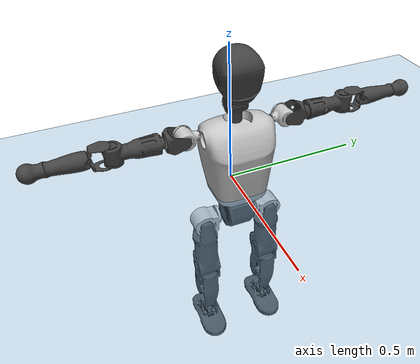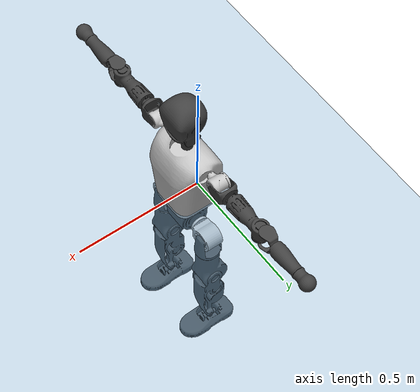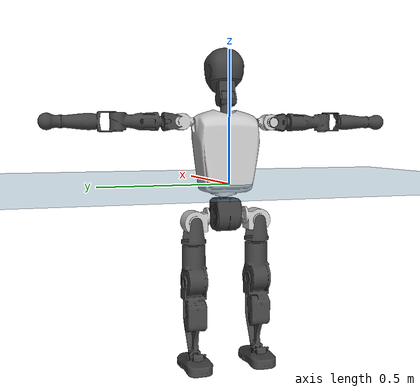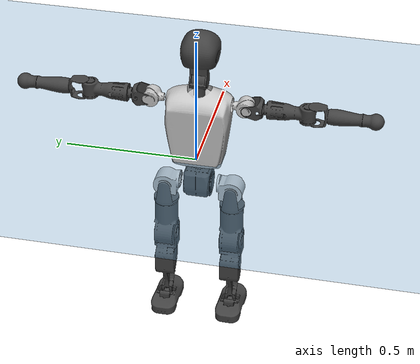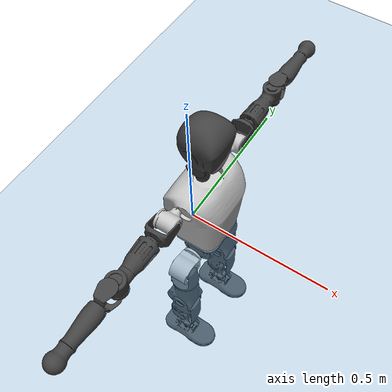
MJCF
<mujoco model="T1">
  <compiler angle="radian" assetdir="assets" balanceinertia="true" inertiafromgeom="false"/>

  <option timestep="0.005" density="1.2" viscosity="2e-05"/>

  <size nkey="1"/>

  <visual>
    <quality shadowsize="8192"/>
    <map shadowclip="0.5"/>
  </visual>

  <default>
    <default class="/">
      <joint armature="0.01" damping="0.01" frictionloss="0.1"/>
      <geom contype="0" conaffinity="0" group="1" solref="-1000 -80"/>
      <site size="0.01 0.005 0.005" group="5"/>
      <general forcelimited="true" biastype="affine" gainprm="25" biasprm="0 -25 -0.6"/>
      <default class="t1">
        <geom rgba="0.25 0.25 0.25 1"/>
        <default class="visual">
          <geom type="mesh" group="2"/>
        </default>
        <default class="collision">
          <geom group="3"/>
        </default>
        <default class="foot">
          <geom size="0.1115 0.05 0.015" type="box" condim="6" group="4" priority="1" solimp="0.015 1 0.015"/>
        </default>
        <default class="reward_collision_sphere">
          <geom group="5" rgba="1 0 0 1"/>
        </default>
      </default>
    </default>
  </default>

  <asset>
    <texture type="skybox" colorspace="auto" name="//unnamed_texture_0" builtin="gradient" rgb1="0.95 0.95 0.95" rgb2="0.95 0.95 0.95" width="100" height="600"/>
    <texture type="2d" colorspace="auto" name="texplane" builtin="checker" rgb1="0.345 0.575 0.748" rgb2="0.345 0.575 0.748" markrgb="1 1 1" width="512" height="512"/>
    <material name="MatPlane" class="/" texture="texplane" texuniform="true" texrepeat="2 2" specular="0.9"/>
    <mesh name="Trunk" class="/" file="Trunk.stl"/>
    <mesh name="H1" class="/" file="H1.stl"/>
    <mesh name="H2" class="/" file="H2.stl"/>
    <mesh name="AL1" class="/" file="AL1.stl"/>
    <mesh name="AL2" class="/" file="AL2.stl"/>
    <mesh name="AL3" class="/" file="AL3.stl"/>
    <mesh name="left_hand_link" class="/" file="left_hand_link.stl"/>
    <mesh name="AR1" class="/" file="AR1.stl"/>
    <mesh name="AR2" class="/" file="AR2.stl"/>
    <mesh name="AR3" class="/" file="AR3.stl"/>
    <mesh name="right_hand_link" class="/" file="right_hand_link.stl"/>
    <mesh name="Waist" class="/" file="Waist.stl"/>
    <mesh name="Hip_Pitch_Left" class="/" file="Hip_Pitch_Left.stl"/>
    <mesh name="Hip_Roll_Left" class="/" file="Hip_Roll_Left.stl"/>
    <mesh name="Hip_Yaw_Left" class="/" file="Hip_Yaw_Left.stl"/>
    <mesh name="Shank_Left" class="/" file="Shank_Left.stl"/>
    <mesh name="Ankle_Cross_Left" class="/" file="Ankle_Cross_Left.stl"/>
    <mesh name="left_foot_link" class="/" file="left_foot_link.stl"/>
    <mesh name="Hip_Pitch_Right" class="/" file="Hip_Pitch_Right.stl"/>
    <mesh name="Hip_Roll_Right" class="/" file="Hip_Roll_Right.stl"/>
    <mesh name="Hip_Yaw_Right" class="/" file="Hip_Yaw_Right.stl"/>
    <mesh name="Shank_Right" class="/" file="Shank_Right.stl"/>
    <mesh name="Ankle_Cross_Right" class="/" file="Ankle_Cross_Right.stl"/>
    <mesh name="right_foot_link" class="/" file="right_foot_link.stl"/>
  </asset>

  <worldbody>
    <geom name="floor" class="/" size="100 100 0.125" type="plane" group="0" material="MatPlane"/>
    <light name="toplight_shadow" class="/" pos="0 0 5" dir="0.0990148 0.0990148 -0.990148" type="directional" ambient="0.04 0.04 0.04" diffuse="0.55 0.55 0.55" specular="0.12 0.12 0.12"/>
    <light name="toplight_fill" class="/" pos="0 0 5" dir="0.0990148 0.0990148 -0.990148" type="directional" castshadow="false" ambient="0.04 0.04 0.04" diffuse="0.3 0.3 0.3" specular="0.08 0.08 0.08"/>
    <body name="trunk" childclass="t1" pos="1.85444e-05 0.00102587 0.000997179" quat="1 -7.52734e-05 -1.54025e-05 -9.54203e-05">
      <inertial pos="0.0385041 0.00181767 0.11302" quat="0.999958 -0.000717907 -0.00915207 0.000189889" mass="11.5843" diaginertia="0.0171276 0.199215 0.0753452"/>
      <joint name="//unnamed_joint_0" type="free" armature="0" damping="0" frictionloss="0"/>
      <geom name="//unnamed_geom_1" class="visual" rgba="0.76 0.76 0.76 1" mesh="Trunk"/>
      <geom name="//unnamed_geom_2" class="collision" size="0.0744988 0.0993318 0.148998" pos="0.0428072 0 0.127029" type="box"/>
      <geom name="//unnamed_geom_3" class="reward_collision_sphere" size="0.114232" pos="0.0428072 0 0.105858"/>
      <geom name="//unnamed_geom_4" class="reward_collision_sphere" size="0.0148998" pos="0.0428072 0.102673 0"/>
      <geom name="//unnamed_geom_5" class="reward_collision_sphere" size="0.0148998" pos="0.0428072 -0.102673 0"/>
      <geom name="//unnamed_geom_6" class="reward_collision_sphere" size="0.0148998" pos="0.0428072 0.129248 0.190544"/>
      <geom name="//unnamed_geom_7" class="reward_collision_sphere" size="0.0148998" pos="0.0428072 -0.129248 0.190544"/>
      <site name="imu" pos="0.00184999 0.00395578 -0.00353894" size="0.00993318"/>
      <camera name="track" pos="0 -2.41584 0" quat="0.707107 0.707107 0 0" mode="trackcom"/>
      <camera name="ego_camera" pos="0.0870413 0 0.444603" quat="-0.5 -0.5 0.5 0.5"/>
      <body name="H1" pos="0.0449597 -0.00177573 0.258271" quat="1 -2.89197e-05 -7.73085e-05 8.48657e-05">
        <inertial pos="-0.000850801 0.000476308 0.060768" quat="0.759109 -0.0138551 0.00470055 0.650799" mass="0.429174" diaginertia="4.36515e-05 0.000565392 0.000201066"/>
        <joint name="AAHead_yaw" pos="0 0 0" axis="-0.00124419 0.00467449 0.999988" stiffness="0.00218975" range="-1.57209 1.5339" armature="0.00982375" damping="0.0145066" frictionloss="0.0873614"/>
        <geom name="//unnamed_geom_8" class="visual" mesh="H1"/>
        <body name="H2" pos="-0.000786775 0.000879863 0.0638958" quat="1 -5.66458e-05 -4.01799e-05 -8.1186e-05">
          <inertial pos="0.00620286 -0.000715892 0.10539" quat="0.989528 0.0971629 -0.0711725 -0.079548" mass="0.619361" diaginertia="0.000376072 0.00494556 0.00231445"/>
          <joint name="Head_pitch" pos="0 0 0" axis="-0.00168585 -0.999998 0.00133282" range="-1.22616 0.348316" armature="0.0098928" damping="0.010214" frictionloss="0.0988118"/>
          <geom name="//unnamed_geom_9" class="visual" mesh="H2"/>
          <geom name="//unnamed_geom_10" class="collision" size="0.0794654" pos="0.00713453 0 0.116444"/>
          <geom name="//unnamed_geom_11" class="reward_collision_sphere" size="0.0893986" pos="0.0142691 0 0.105858"/>
        </body>
      </body>
      <body name="AL1" pos="0.0418233 0.129524 0.232695" quat="0.999999 -0.000378067 0.00132897 0.000341258">
        <inertial pos="-0.000536117 0.0549743 0.000874637" quat="0.507385 0.500213 -0.504678 0.487491" mass="0.52043" diaginertia="0.000250058 0.00341227 0.000392362"/>
        <joint name="Left_Shoulder_Pitch" pos="0 0 0" axis="0.000610577 0.999999 0.00122448" stiffness="0.00055384" range="-3.31987 1.24769" armature="0.0099817" damping="0.014787" frictionloss="0.0996397"/>
        <geom name="//unnamed_geom_12" class="visual" rgba="0.76 0.76 0.76 1" mesh="AL1"/>
        <body name="AL2" pos="0.00109773 0.0590915 2.51225e-05" quat="1 3.6456e-05 -2.52687e-05 -1.48788e-05">
          <inertial pos="0.00466618 0.0479555 -0.000588609" quat="0.492026 0.503155 -0.494699 0.50992" mass="0.15606" diaginertia="7.43538e-05 0.000892869 0.000241552"/>
          <joint name="Left_Shoulder_Roll" pos="0 0 0" axis="-1 4.95488e-05 0.000502684" range="-1.57281 1.7422" armature="0.0094622" damping="0.00773991" frictionloss="0.100835"/>
          <geom name="//unnamed_geom_13" class="visual" mesh="AL2"/>
          <body name="AL3" pos="0.000486193 0.0758976 0.000254155" quat="1 5.24475e-06 -0.00021353 0.000169202">
            <inertial pos="-0.00221923 0.103465 4.15735e-05" quat="0.705872 0.70834 0.00036262 -7.18745e-05" mass="1.02417" diaginertia="0.00243973 0.033367 0.000829261"/>
            <joint name="Left_Elbow_Pitch" pos="0 0 0" axis="0.000936916 -0.999993 0.00367894" range="-2.27016 2.30672" armature="0.0100005" damping="0.0132547" frictionloss="0.100741"/>
            <geom name="//unnamed_geom_14" class="visual" mesh="AL3"/>
            <geom name="//unnamed_geom_15" class="collision" size="0.0297995 0.0744988" pos="0 0.0603961 0" quat="0.707105 0.707108 0 0" type="cylinder"/>
            <geom name="//unnamed_geom_16" class="reward_collision_sphere" size="0.0357594"/>
            <body name="left_hand_link" pos="-0.000479649 0.180075 -0.00127604" quat="1 0.000109178 4.22891e-05 -1.05432e-05">
              <inertial pos="0.000424656 0.132018 0.00105108" quat="0.706458 0.707745 0.00371775 -0.000774805" mass="0.320803" diaginertia="0.00148406 0.020921 0.000284199"/>
              <joint name="Left_Elbow_Yaw" pos="0 0 0" axis="0.00756014 -0.00102623 0.999971" stiffness="0.00558388" range="-2.48265 -0.00619199" armature="0.00992116" damping="0.000405347" frictionloss="0.104271"/>
              <geom name="//unnamed_geom_17" class="visual" mesh="left_hand_link"/>
              <geom name="//unnamed_geom_18" class="collision" size="0.0297995 0.0869153" pos="0 0.15703 0" quat="0.707105 0.707108 0 0" type="cylinder"/>
              <geom name="//unnamed_geom_19" class="reward_collision_sphere" size="0.0496659"/>
              <geom name="//unnamed_geom_20" class="reward_collision_sphere" size="0.0347661" pos="0 0.132871 0"/>
              <geom name="//unnamed_geom_21" class="reward_collision_sphere" size="0.0347661" pos="0 0.259703 0"/>
            </body>
          </body>
        </body>
      </body>
      <body name="AR1" pos="0.0398841 -0.127777 0.231496" quat="1 1.44601e-06 0.000459692 1.42342e-05">
        <inertial pos="-0.0008479 -0.0543713 -0.00207414" quat="0.505421 0.492963 -0.498465 0.50306" mass="0.522014" diaginertia="0.000249246 0.00325216 0.000386061"/>
        <joint name="Right_Shoulder_Pitch" pos="0 0 0" axis="-0.000434629 -0.999989 0.00474081" stiffness="0.00518909" range="-1.2282 3.31708" armature="0.0102449" damping="0" frictionloss="0.0886301"/>
        <geom name="//unnamed_geom_22" class="visual" rgba="0.76 0.76 0.76 1" mesh="AR1"/>
        <body name="AR2" pos="-0.00185773 -0.0559364 -0.000292801" quat="1 -1.18535e-05 -4.15551e-05 1.62336e-05">
          <inertial pos="0.00311312 -0.0481358 -5.01555e-05" quat="0.506974 0.491004 -0.51817 0.483107" mass="0.15585" diaginertia="7.29333e-05 0.000880558 0.000231778"/>
          <joint name="Right_Shoulder_Roll" pos="0 0 0" axis="-0.999988 0.00460465 -0.00138366" stiffness="0.00576437" range="-1.73706 1.57729" armature="0.00990929" damping="0" frictionloss="0.0957547"/>
          <geom name="//unnamed_geom_23" class="visual" mesh="AR2"/>
          <body name="AR3" pos="-0.000939034 -0.0733892 0.000756912" quat="1 0.000116826 -7.53106e-05 1.98768e-05">
            <inertial pos="-0.00125115 -0.103619 0.000386157" quat="0.707788 0.706425 -0.000132346 -0.000363058" mass="0.994221" diaginertia="0.00236796 0.03188 0.000832959"/>
            <joint name="Right_Elbow_Pitch" pos="0 0 0" axis="0.00174899 0.999991 -0.00397545" range="-2.27902 2.24867" armature="0.00993308" damping="0.00880124" frictionloss="0.0984344"/>
            <geom name="//unnamed_geom_24" class="visual" mesh="AR3"/>
            <geom name="//unnamed_geom_25" class="collision" size="0.0297995 0.0744988" pos="0 -0.0603961 0" quat="0.707105 0.707108 0 0" type="cylinder"/>
            <geom name="//unnamed_geom_26" class="reward_collision_sphere" size="0.0357594"/>
            <body name="right_hand_link" pos="-0.000964329 -0.176119 0.00184322" quat="1 0.000130872 -1.94586e-05 3.0244e-05">
              <inertial pos="-0.000325773 -0.13182 -0.000216438" quat="0.706447 0.707764 0.000372798 -0.00183536" mass="0.32231" diaginertia="0.00149406 0.0206882 0.000286999"/>
              <joint name="Right_Elbow_Yaw" pos="0 0 0" axis="-0.00182554 -0.00203222 0.999996" range="0.000150986 2.4448" armature="0.00961828" damping="0.00681108" frictionloss="0.109419"/>
              <geom name="//unnamed_geom_27" class="visual" mesh="right_hand_link"/>
              <geom name="//unnamed_geom_28" class="collision" size="0.0297995 0.0869153" pos="0 -0.15703 0" quat="0.707105 0.707108 0 0" type="cylinder"/>
              <geom name="//unnamed_geom_29" class="reward_collision_sphere" size="0.0496659"/>
              <geom name="//unnamed_geom_30" class="reward_collision_sphere" size="0.0347661" pos="0 -0.132871 0"/>
              <geom name="//unnamed_geom_31" class="reward_collision_sphere" size="0.0347661" pos="0 -0.259703 0"/>
            </body>
          </body>
        </body>
      </body>
      <body name="Waist" pos="0.0446731 0.000251452 -0.124142" quat="1 0.000146198 2.64918e-05 -0.000154061">
        <inertial pos="-0.00106022 -0.000943924 0.00757088" quat="0.983974 -0.000678483 -0.178307 0.00121978" mass="2.51667" diaginertia="0.000967621 0.0136431 0.00624856"/>
        <joint name="Waist" pos="0 0 0" axis="-0.00557917 0.00380474 0.999977" stiffness="2.30929e-05" range="-1.56191 1.56768" armature="0.0101112" damping="0.0135921" frictionloss="0.098556"/>
        <geom name="//unnamed_geom_32" class="visual" mesh="Waist"/>
        <body name="Hip_Pitch_Left" pos="3.14003e-05 0.127043 -0.00195732" quat="1 0.00011547 -2.76593e-05 -3.64507e-05">
          <inertial pos="0.000804671 -0.00804089 -0.0190277" quat="0.975371 0.220178 0.0131135 0.00115919" mass="1.02333" diaginertia="0.000333233 0.00375349 0.00166325"/>
          <joint name="Left_Hip_Pitch" pos="0 0 0" axis="0.000735256 0.999996 -0.00290327" range="-1.79825 1.61019" armature="0.0109701" damping="0.0102806" frictionloss="0.0942988"/>
          <geom name="//unnamed_geom_33" class="visual" rgba="0.76 0.76 0.76 1" mesh="Hip_Pitch_Left"/>
          <body name="Hip_Roll_Left" pos="0.00185443 6.83044e-05 -0.0225395" quat="1 0.000362884 0.000421013 0.000185421">
            <inertial pos="0.00191124 7.00359e-05 -0.057758" quat="0.713079 -0.00881314 0.000167014 0.701028" mass="0.362591" diaginertia="0.000313366 0.0038236 0.000677339"/>
            <joint name="Left_Hip_Roll" pos="0 0 0" axis="-0.999987 0.00404435 0.00304697" stiffness="0.00146258" range="-1.56807 0.196429" armature="0.0109036" damping="0.0173752" frictionloss="0.101241"/>
            <geom name="//unnamed_geom_34" class="visual" mesh="Hip_Roll_Left"/>
            <geom name="//unnamed_geom_35" class="reward_collision_sphere" size="0.0546325"/>
            <body name="Hip_Yaw_Left" pos="-3.83161e-05 -0.000308138 -0.0851593" quat="1 -1.39348e-05 -2.32075e-05 -1.57912e-06">
              <inertial pos="-0.00627884 -0.00123801 -0.0944197" quat="0.695552 -0.0354748 -0.0315866 0.716904" mass="2.15295" diaginertia="0.00474066 0.0635916 0.00343496"/>
              <joint name="Left_Hip_Yaw" pos="0 0 0" axis="0.000171815 -0.000284984 -1" stiffness="0.000287249" range="-0.999962 1.04188" armature="0.00980106" damping="0.00940133" frictionloss="0.0989379"/>
              <geom name="//unnamed_geom_36" class="visual" mesh="Hip_Yaw_Left"/>
              <geom name="//unnamed_geom_37" class="collision" size="0.0496659 0.0794654" type="cylinder"/>
              <body name="Shank_Left" pos="-0.0073479 -8.53564e-05 -0.143793" quat="1 -0.000101675 -0.000133056 8.95157e-05">
                <inertial pos="-0.00407386 0.00186887 -0.130075" quat="0.997543 0.00148555 -0.0241191 0.06576" mass="1.64435" diaginertia="0.00642888 0.0883124 0.00244955"/>
                <joint name="Left_Knee_Pitch" pos="0 0 0" axis="0.00169389 0.999998 0.000422714" range="-0.0174818 2.35827" armature="0.00984391" damping="0.00992018" frictionloss="0.101874"/>
                <geom name="//unnamed_geom_38" class="visual" mesh="Shank_Left"/>
                <geom name="//unnamed_geom_39" class="collision" size="0.0496659 0.0744988" pos="0 0 -0.127029" type="cylinder"/>
                <geom name="//unnamed_geom_40" class="reward_collision_sphere" size="0.0645657"/>
                <body name="Ankle_Cross_Left" pos="-0.00107964 0.000135845 -0.295866" quat="1 -2.75255e-05 0.000235642 -8.14456e-05">
                  <inertial pos="-0.00160209 0.000719668 -0.00892662" quat="0.445581 0.550079 0.552302 0.440265" mass="0.0719929" diaginertia="5.41783e-06 6.55226e-05 1.49838e-05"/>
                  <joint name="Left_Ankle_Pitch" pos="0 0 0" axis="0.00121163 0.999999 -0.000158455" stiffness="0.00132548" range="-0.831186 0.347927" armature="0.0102133" damping="0.0162656" frictionloss="0.0948131"/>
                  <geom name="//unnamed_geom_41" class="visual" mesh="Ankle_Cross_Left"/>
                  <body name="left_foot_link" pos="0.000758294 -0.000480332 -0.0117717" quat="1 0.000368869 0.000276608 1.83808e-05">
                    <inertial pos="-0.00098569 0.000164115 -0.0108471" quat="0.00253243 0.618441 -0.00258844 0.785823" mass="0.662118" diaginertia="0.000478268 0.00598987 0.00293602"/>
                    <joint name="Left_Ankle_Roll" pos="0 0 0" axis="-0.999992 0.00331157 0.00217853" range="-0.443184 0.441555" armature="0.00988654" damping="0.0167121" frictionloss="0.099571"/>
                    <geom name="//unnamed_geom_42" class="visual" mesh="left_foot_link"/>
                    <geom name="left_foot" class="foot" size="0.1041 0.0494777 0.0158251" pos="0.00713453 0 -0.0158787"/>
                    <geom name="//unnamed_geom_44" class="reward_collision_sphere" size="0.0516525" pos="0.00713453 0 -0.0158787"/>
                    <geom name="//unnamed_geom_45" class="reward_collision_sphere" size="0.0297995" pos="0.067778 -0.0277822 -0.0158787"/>
                    <geom name="//unnamed_geom_46" class="reward_collision_sphere" size="0.0297995" pos="-0.0499417 -0.0277822 -0.0158787"/>
                    <site name="left_foot" class="foot" pos="0.00713453 0 -0.0158787" size="0.00993318"/>
                  </body>
                </body>
              </body>
            </body>
          </body>
        </body>
        <body name="Hip_Pitch_Right" pos="-0.000792449 -0.128822 -0.000372439" quat="1 -0.000210998 0.000261969 -0.000522563">
          <inertial pos="-0.0007022 0.0101012 -0.0173404" quat="0.974266 -0.224889 0.0137703 -0.00638825" mass="1.00573" diaginertia="0.000335202 0.00381779 0.00161898"/>
          <joint name="Right_Hip_Pitch" pos="0 0 0" axis="-0.00128124 -0.999999 -0.000509563" range="-1.57266 1.75302" armature="0.0098001" damping="0.0111534" frictionloss="0.100489"/>
          <geom name="//unnamed_geom_47" class="visual" rgba="0.76 0.76 0.76 1" mesh="Hip_Pitch_Right"/>
          <body name="Hip_Roll_Right" pos="0.00189401 -0.000121075 -0.0218788" quat="1 -7.24472e-05 -0.000115354 -6.95724e-05">
            <inertial pos="0.00106338 -0.00126478 -0.0566679" quat="0.706209 0.00482474 -0.00535323 0.707967" mass="0.384516" diaginertia="0.000321961 0.00399869 0.000686463"/>
            <joint name="Right_Hip_Roll" pos="0 0 0" axis="-0.999992 0.00131597 0.00369887" stiffness="0.000660205" range="-0.153861 1.58582" armature="0.00986202" damping="0.00667449" frictionloss="0.0964871"/>
            <geom name="//unnamed_geom_48" class="visual" mesh="Hip_Roll_Right"/>
            <geom name="//unnamed_geom_49" class="reward_collision_sphere" size="0.0546325"/>
            <body name="Hip_Yaw_Right" pos="0.00117326 0.000737804 -0.0873647" quat="1 -1.60672e-05 -1.07315e-05 -3.90356e-05">
              <inertial pos="-0.00521454 -1.61723e-05 -0.0965596" quat="0.717636 -0.0299348 -0.0319286 0.695042" mass="2.0985" diaginertia="0.00472867 0.0642644 0.00342349"/>
              <joint name="Right_Hip_Yaw" pos="0 0 0" axis="0.0122991 -0.0092336 -0.999882" stiffness="0.00434197" range="-0.996342 0.995671" armature="0.0106877" damping="0" frictionloss="0.0988618"/>
              <geom name="//unnamed_geom_50" class="visual" mesh="Hip_Yaw_Right"/>
              <geom name="//unnamed_geom_51" class="collision" size="0.0496659 0.0794654" type="cylinder"/>
              <body name="Shank_Right" pos="-0.00878813 -0.000776071 -0.140453" quat="1 -5.69356e-05 0.000169812 -3.42655e-05">
                <inertial pos="-0.00476467 -0.000421313 -0.130897" quat="0.999314 -0.0024399 -0.023451 -0.0285593" mass="1.80705" diaginertia="0.00675769 0.0929694 0.00268561"/>
                <joint name="Right_Knee_Pitch" pos="0 0 0" axis="-0.0017822 -0.999998 0.000765833" range="-2.30285 -0.0183938" armature="0.0110269" damping="0.0111575" frictionloss="0.100146"/>
                <geom name="//unnamed_geom_52" class="visual" mesh="Shank_Right"/>
                <geom name="//unnamed_geom_53" class="collision" size="0.0496659 0.0744988" pos="0 0 -0.127029" type="cylinder"/>
                <geom name="//unnamed_geom_54" class="reward_collision_sphere" size="0.0645657"/>
                <body name="Ankle_Cross_Right" pos="0.000371149 -0.00117819 -0.297305" quat="1 -3.98604e-05 -1.35748e-05 6.09504e-06">
                  <inertial pos="-0.0023388 0.000133021 -0.00839156" quat="0.444834 0.554259 0.548248 0.440844" mass="0.0705412" diaginertia="5.37897e-06 6.60104e-05 1.48411e-05"/>
                  <joint name="Right_Ankle_Pitch" pos="0 0 0" axis="-0.000473381 -0.999998 0.00216821" range="-0.379325 0.836884" armature="0.00989971" damping="0.0107928" frictionloss="0.101414"/>
                  <geom name="//unnamed_geom_55" class="visual" mesh="Ankle_Cross_Right"/>
                  <body name="right_foot_link" pos="0.00214734 -0.00116128 -0.0124625" quat="1 1.02209e-05 1.71224e-05 1.99707e-06">
                    <inertial pos="-0.00230096 0.000352133 -0.00954955" quat="0.000339672 0.62033 0.000578768 0.784341" mass="0.672187" diaginertia="0.000497297 0.00606724 0.00292537"/>
                    <joint name="Right_Ankle_Roll" pos="0 0 0" axis="-1 -0.000260054 -0.000105729" stiffness="0.000876898" range="-0.480617 0.439638" armature="0.0102111" damping="0" frictionloss="0.10075"/>
                    <geom name="//unnamed_geom_56" class="visual" mesh="right_foot_link"/>
                    <geom name="right_foot" class="foot" size="0.0998215 0.0471957 0.0154542" pos="0.00713453 0 -0.0158787"/>
                    <geom name="//unnamed_geom_58" class="reward_collision_sphere" size="0.0397327"/>
                    <geom name="//unnamed_geom_59" class="reward_collision_sphere" size="0.0297995" pos="0.00713453 0 -0.0158787"/>
                    <geom name="//unnamed_geom_60" class="reward_collision_sphere" size="0.0297995" pos="0.067778 0.0277822 -0.0158787"/>
                    <geom name="//unnamed_geom_61" class="reward_collision_sphere" size="0.0297995" pos="-0.0499417 0.0277822 -0.0158787"/>
                    <site name="right_foot" class="foot" pos="0.00713453 0 -0.0158787" size="0.00993318"/>
                  </body>
                </body>
              </body>
            </body>
          </body>
        </body>
      </body>
    </body>
  </worldbody>

  <contact>
    <pair class="/" geom1="floor" geom2="left_foot" name="//unnamed_contact_0"/>
    <pair class="/" geom1="floor" geom2="right_foot" name="//unnamed_contact_1"/>
  </contact>

  <actuator>
    <general name="AAHead_yaw" class="/" joint="AAHead_yaw" forcerange="-6.73086 6.73086" gainprm="24.4758" biasprm="0 -24.4758 -0.579229"/>
    <general name="Head_pitch" class="/" joint="Head_pitch" forcerange="-6.981 6.981" gainprm="24.4758" biasprm="0 -24.4758 -0.579229"/>
    <general name="Left_Shoulder_Pitch" class="/" joint="Left_Shoulder_Pitch" forcerange="-17.968 17.968" gainprm="24.4758" biasprm="0 -24.4758 -0.579229"/>
    <general name="Left_Shoulder_Roll" class="/" joint="Left_Shoulder_Roll" forcerange="-18.4107 18.4107" gainprm="24.4758" biasprm="0 -24.4758 -0.579229"/>
    <general name="Left_Elbow_Pitch" class="/" joint="Left_Elbow_Pitch" forcerange="-17.9484 17.9484" gainprm="24.4758" biasprm="0 -24.4758 -0.579229"/>
    <general name="Left_Elbow_Yaw" class="/" joint="Left_Elbow_Yaw" forcerange="-18.6846 18.6846" gainprm="24.4758" biasprm="0 -24.4758 -0.579229"/>
    <general name="Right_Shoulder_Pitch" class="/" joint="Right_Shoulder_Pitch" forcerange="-17.2671 17.2671" gainprm="24.4758" biasprm="0 -24.4758 -0.579229"/>
    <general name="Right_Shoulder_Roll" class="/" joint="Right_Shoulder_Roll" forcerange="-18.201 18.201" gainprm="24.4758" biasprm="0 -24.4758 -0.579229"/>
    <general name="Right_Elbow_Pitch" class="/" joint="Right_Elbow_Pitch" forcerange="-19.2284 19.2284" gainprm="24.4758" biasprm="0 -24.4758 -0.579229"/>
    <general name="Right_Elbow_Yaw" class="/" joint="Right_Elbow_Yaw" forcerange="-17.0886 17.0886" gainprm="24.4758" biasprm="0 -24.4758 -0.579229"/>
    <general name="Waist" class="/" joint="Waist" forcerange="-28.6913 28.6913" gainprm="24.4758" biasprm="0 -24.4758 -0.579229"/>
    <general name="Left_Hip_Pitch" class="/" joint="Left_Hip_Pitch" forcerange="-44.3522 44.3522" gainprm="24.4758" biasprm="0 -24.4758 -0.579229"/>
    <general name="Left_Hip_Roll" class="/" joint="Left_Hip_Roll" forcerange="-30.7441 30.7441" gainprm="24.4758" biasprm="0 -24.4758 -0.579229"/>
    <general name="Left_Hip_Yaw" class="/" joint="Left_Hip_Yaw" forcerange="-28.5126 28.5126" gainprm="24.4758" biasprm="0 -24.4758 -0.579229"/>
    <general name="Left_Knee_Pitch" class="/" joint="Left_Knee_Pitch" forcerange="-59.9661 59.9661" gainprm="24.4758" biasprm="0 -24.4758 -0.579229"/>
    <general name="Left_Ankle_Pitch" class="/" joint="Left_Ankle_Pitch" forcerange="-20.0614 20.0614" gainprm="24.4758" biasprm="0 -24.4758 -0.579229"/>
    <general name="Left_Ankle_Roll" class="/" joint="Left_Ankle_Roll" forcerange="-15.7921 15.7921" gainprm="24.4758" biasprm="0 -24.4758 -0.579229"/>
    <general name="Right_Hip_Pitch" class="/" joint="Right_Hip_Pitch" forcerange="-44.7048 44.7048" gainprm="24.4758" biasprm="0 -24.4758 -0.579229"/>
    <general name="Right_Hip_Roll" class="/" joint="Right_Hip_Roll" forcerange="-29.3886 29.3886" gainprm="24.4758" biasprm="0 -24.4758 -0.579229"/>
    <general name="Right_Hip_Yaw" class="/" joint="Right_Hip_Yaw" forcerange="-32.226 32.226" gainprm="24.4758" biasprm="0 -24.4758 -0.579229"/>
    <general name="Right_Knee_Pitch" class="/" joint="Right_Knee_Pitch" forcerange="-59.4105 59.4105" gainprm="24.4758" biasprm="0 -24.4758 -0.579229"/>
    <general name="Right_Ankle_Pitch" class="/" joint="Right_Ankle_Pitch" forcerange="-20.0487 20.0487" gainprm="24.4758" biasprm="0 -24.4758 -0.579229"/>
    <general name="Right_Ankle_Roll" class="/" joint="Right_Ankle_Roll" forcerange="-15.036 15.036" gainprm="24.4758" biasprm="0 -24.4758 -0.579229"/>
  </actuator>

  <sensor>
    <gyro site="imu" name="imu_angular_velocity"/>
    <velocimeter site="imu" name="imu_linear_velocity"/>
    <framelinvel objtype="site" objname="left_foot" name="left_foot_global_linear_velocity"/>
    <framelinvel objtype="site" objname="right_foot" name="right_foot_global_linear_velocity"/>
  </sensor>

  <keyframe>
    <key name="home" qpos="0 0 0.6385 1 0 0 0 0 0 0 1.4 0 -0.4 0 -1.4 0 0.4 0 -0.4 0 0 0.8 -0.4 0 0.4 0 0 -0.8 0.4 0"/>
  </keyframe>
</mujoco>
